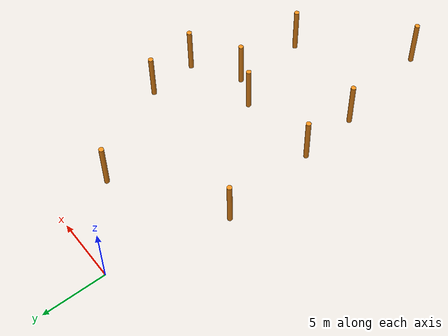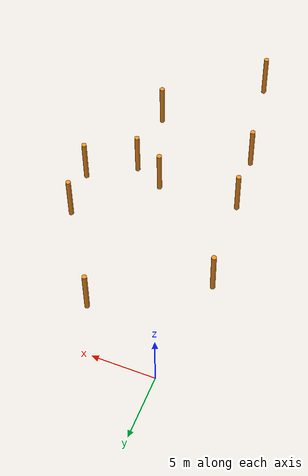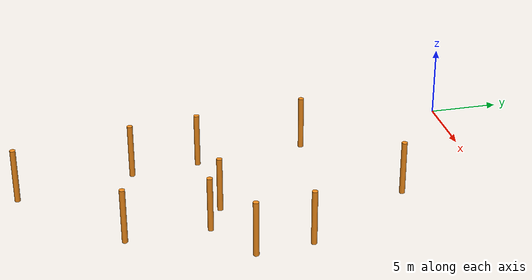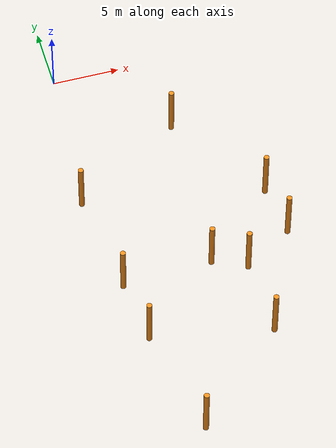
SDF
<sdf version="1.6">
 <model name="Skog">
  <link name="link_1">
   <inertial>
    <mass>1</mass>
    <inertia><ixx>0.145833</ixx><ixy>0</ixy><ixz>0</ixz><iyy>0.145833</iyy><iyz>0</iyz><izz>0.125</izz></inertia>
   </inertial>
   <pose>-0.568148 -10.2215 0 0 -0 0</pose>
   <visual name="visual">
    <geometry><cylinder><radius>0.2</radius><length>4</length></cylinder></geometry>
    <material>
     <lighting>1</lighting>
     <script><uri>file://media/materials/scripts/gazebo.material</uri><name>Gazebo/Orange</name></script>
     <shader type="vertex"><normal_map>__default__</normal_map></shader>
     <ambient>0.3 0.3 0.3 1</ambient>
     <diffuse>0.7 0.7 0.7 1</diffuse>
     <specular>0.01 0.01 0.01 1</specular>
     <emissive>0 0 0 1</emissive>
    </material>
   </visual>
   <collision name="collision">
    <geometry><cylinder><radius>0.2</radius><length>4</length></cylinder></geometry>
    <surface>
     <friction>
      <ode><mu>1</mu><mu2>1</mu2><fdir1>0 0 0</fdir1><slip1>0</slip1><slip2>0</slip2></ode>
      <torsional>
       <coefficient>1</coefficient>
       <patch_radius>0</patch_radius>
       <surface_radius>0</surface_radius>
       <use_patch_radius>1</use_patch_radius>
       <ode><slip>0</slip></ode>
      </torsional>
     </friction>
     <bounce><restitution_coefficient>0</restitution_coefficient><threshold>1e+06</threshold></bounce>
     <contact>
      <collide_without_contact>0</collide_without_contact>
      <collide_without_contact_bitmask>1</collide_without_contact_bitmask>
      <collide_bitmask>1</collide_bitmask>
      <ode>
       <soft_cfm>0</soft_cfm>
       <soft_erp>0.2</soft_erp>
       <kp>1e+13</kp>
       <kd>1</kd>
       <max_vel>0.01</max_vel>
       <min_depth>0</min_depth>
      </ode>
      <bullet>
       <split_impulse>1</split_impulse>
       <split_impulse_penetration_threshold>-0.01</split_impulse_penetration_threshold>
       <soft_cfm>0</soft_cfm>
       <soft_erp>0.2</soft_erp>
       <kp>1e+13</kp>
       <kd>1</kd>
      </bullet>
     </contact>
    </surface>
   </collision>
  </link>
  <link name="link_1_clone">
   <inertial>
    <mass>1</mass>
    <inertia><ixx>0.145833</ixx><ixy>0</ixy><ixz>0</ixz><iyy>0.145833</iyy><iyz>0</iyz><izz>0.125</izz></inertia>
   </inertial>
   <pose>7.77562 -4.95725 0 0 -0 0</pose>
   <visual name="visual">
    <geometry><cylinder><radius>0.2</radius><length>4</length></cylinder></geometry>
    <material>
     <lighting>1</lighting>
     <script><uri>file://media/materials/scripts/gazebo.material</uri><name>Gazebo/Orange</name></script>
     <shader type="vertex"><normal_map>__default__</normal_map></shader>
     <ambient>0.3 0.3 0.3 1</ambient>
     <diffuse>0.7 0.7 0.7 1</diffuse>
     <specular>0.01 0.01 0.01 1</specular>
     <emissive>0 0 0 1</emissive>
    </material>
   </visual>
   <collision name="collision">
    <geometry><cylinder><radius>0.2</radius><length>4</length></cylinder></geometry>
    <surface>
     <friction>
      <ode><mu>1</mu><mu2>1</mu2><fdir1>0 0 0</fdir1><slip1>0</slip1><slip2>0</slip2></ode>
      <torsional>
       <coefficient>1</coefficient>
       <patch_radius>0</patch_radius>
       <surface_radius>0</surface_radius>
       <use_patch_radius>1</use_patch_radius>
       <ode><slip>0</slip></ode>
      </torsional>
     </friction>
     <bounce><restitution_coefficient>0</restitution_coefficient><threshold>1e+06</threshold></bounce>
     <contact>
      <collide_without_contact>0</collide_without_contact>
      <collide_without_contact_bitmask>1</collide_without_contact_bitmask>
      <collide_bitmask>1</collide_bitmask>
      <ode>
       <soft_cfm>0</soft_cfm>
       <soft_erp>0.2</soft_erp>
       <kp>1e+13</kp>
       <kd>1</kd>
       <max_vel>0.01</max_vel>
       <min_depth>0</min_depth>
      </ode>
      <bullet>
       <split_impulse>1</split_impulse>
       <split_impulse_penetration_threshold>-0.01</split_impulse_penetration_threshold>
       <soft_cfm>0</soft_cfm>
       <soft_erp>0.2</soft_erp>
       <kp>1e+13</kp>
       <kd>1</kd>
      </bullet>
     </contact>
    </surface>
   </collision>
  </link>
  <link name="link_1_clone_21">
   <inertial>
    <mass>1</mass>
    <inertia><ixx>0.145833</ixx><ixy>0</ixy><ixz>0</ixz><iyy>0.145833</iyy><iyz>0</iyz><izz>0.125</izz></inertia>
   </inertial>
   <pose>13.2087 -16.7724 0 0 -0 0</pose>
   <visual name="visual">
    <geometry><cylinder><radius>0.2</radius><length>4</length></cylinder></geometry>
    <material>
     <lighting>1</lighting>
     <script><uri>file://media/materials/scripts/gazebo.material</uri><name>Gazebo/Orange</name></script>
     <shader type="vertex"><normal_map>__default__</normal_map></shader>
     <ambient>0.3 0.3 0.3 1</ambient>
     <diffuse>0.7 0.7 0.7 1</diffuse>
     <specular>0.01 0.01 0.01 1</specular>
     <emissive>0 0 0 1</emissive>
    </material>
   </visual>
   <collision name="collision">
    <geometry><cylinder><radius>0.2</radius><length>4</length></cylinder></geometry>
    <surface>
     <friction>
      <ode><mu>1</mu><mu2>1</mu2><fdir1>0 0 0</fdir1><slip1>0</slip1><slip2>0</slip2></ode>
      <torsional>
       <coefficient>1</coefficient>
       <patch_radius>0</patch_radius>
       <surface_radius>0</surface_radius>
       <use_patch_radius>1</use_patch_radius>
       <ode><slip>0</slip></ode>
      </torsional>
     </friction>
     <bounce><restitution_coefficient>0</restitution_coefficient><threshold>1e+06</threshold></bounce>
     <contact>
      <collide_without_contact>0</collide_without_contact>
      <collide_without_contact_bitmask>1</collide_without_contact_bitmask>
      <collide_bitmask>1</collide_bitmask>
      <ode>
       <soft_cfm>0</soft_cfm>
       <soft_erp>0.2</soft_erp>
       <kp>1e+13</kp>
       <kd>1</kd>
       <max_vel>0.01</max_vel>
       <min_depth>0</min_depth>
      </ode>
      <bullet>
       <split_impulse>1</split_impulse>
       <split_impulse_penetration_threshold>-0.01</split_impulse_penetration_threshold>
       <soft_cfm>0</soft_cfm>
       <soft_erp>0.2</soft_erp>
       <kp>1e+13</kp>
       <kd>1</kd>
      </bullet>
     </contact>
    </surface>
   </collision>
  </link>
  <link name="link_1_clone_32">
   <inertial>
    <mass>1</mass>
    <inertia><ixx>0.145833</ixx><ixy>0</ixy><ixz>0</ixz><iyy>0.145833</iyy><iyz>0</iyz><izz>0.125</izz></inertia>
   </inertial>
   <pose>0.377332 -18.2945 0 0 -0 0</pose>
   <visual name="visual">
    <geometry><cylinder><radius>0.2</radius><length>4</length></cylinder></geometry>
    <material>
     <lighting>1</lighting>
     <script><uri>file://media/materials/scripts/gazebo.material</uri><name>Gazebo/Orange</name></script>
     <shader type="vertex"><normal_map>__default__</normal_map></shader>
     <ambient>0.3 0.3 0.3 1</ambient>
     <diffuse>0.7 0.7 0.7 1</diffuse>
     <specular>0.01 0.01 0.01 1</specular>
     <emissive>0 0 0 1</emissive>
    </material>
   </visual>
   <collision name="collision">
    <geometry><cylinder><radius>0.2</radius><length>4</length></cylinder></geometry>
    <surface>
     <friction>
      <ode><mu>1</mu><mu2>1</mu2><fdir1>0 0 0</fdir1><slip1>0</slip1><slip2>0</slip2></ode>
      <torsional>
       <coefficient>1</coefficient>
       <patch_radius>0</patch_radius>
       <surface_radius>0</surface_radius>
       <use_patch_radius>1</use_patch_radius>
       <ode><slip>0</slip></ode>
      </torsional>
     </friction>
     <bounce><restitution_coefficient>0</restitution_coefficient><threshold>1e+06</threshold></bounce>
     <contact>
      <collide_without_contact>0</collide_without_contact>
      <collide_without_contact_bitmask>1</collide_without_contact_bitmask>
      <collide_bitmask>1</collide_bitmask>
      <ode>
       <soft_cfm>0</soft_cfm>
       <soft_erp>0.2</soft_erp>
       <kp>1e+13</kp>
       <kd>1</kd>
       <max_vel>0.01</max_vel>
       <min_depth>0</min_depth>
      </ode>
      <bullet>
       <split_impulse>1</split_impulse>
       <split_impulse_penetration_threshold>-0.01</split_impulse_penetration_threshold>
       <soft_cfm>0</soft_cfm>
       <soft_erp>0.2</soft_erp>
       <kp>1e+13</kp>
       <kd>1</kd>
      </bullet>
     </contact>
    </surface>
   </collision>
  </link>
  <link name="link_1_clone_38">
   <inertial>
    <mass>1</mass>
    <inertia><ixx>0.145833</ixx><ixy>0</ixy><ixz>0</ixz><iyy>0.145833</iyy><iyz>0</iyz><izz>0.125</izz></inertia>
   </inertial>
   <pose>0.933823 -23.2058 0 0 -0 0</pose>
   <visual name="visual">
    <geometry><cylinder><radius>0.2</radius><length>4</length></cylinder></geometry>
    <material>
     <lighting>1</lighting>
     <script><uri>file://media/materials/scripts/gazebo.material</uri><name>Gazebo/Orange</name></script>
     <shader type="vertex"><normal_map>__default__</normal_map></shader>
     <ambient>0.3 0.3 0.3 1</ambient>
     <diffuse>0.7 0.7 0.7 1</diffuse>
     <specular>0.01 0.01 0.01 1</specular>
     <emissive>0 0 0 1</emissive>
    </material>
   </visual>
   <collision name="collision">
    <geometry><cylinder><radius>0.2</radius><length>4</length></cylinder></geometry>
    <surface>
     <friction>
      <ode><mu>1</mu><mu2>1</mu2><fdir1>0 0 0</fdir1><slip1>0</slip1><slip2>0</slip2></ode>
      <torsional>
       <coefficient>1</coefficient>
       <patch_radius>0</patch_radius>
       <surface_radius>0</surface_radius>
       <use_patch_radius>1</use_patch_radius>
       <ode><slip>0</slip></ode>
      </torsional>
     </friction>
     <bounce><restitution_coefficient>0</restitution_coefficient><threshold>1e+06</threshold></bounce>
     <contact>
      <collide_without_contact>0</collide_without_contact>
      <collide_without_contact_bitmask>1</collide_without_contact_bitmask>
      <collide_bitmask>1</collide_bitmask>
      <ode>
       <soft_cfm>0</soft_cfm>
       <soft_erp>0.2</soft_erp>
       <kp>1e+13</kp>
       <kd>1</kd>
       <max_vel>0.01</max_vel>
       <min_depth>0</min_depth>
      </ode>
      <bullet>
       <split_impulse>1</split_impulse>
       <split_impulse_penetration_threshold>-0.01</split_impulse_penetration_threshold>
       <soft_cfm>0</soft_cfm>
       <soft_erp>0.2</soft_erp>
       <kp>1e+13</kp>
       <kd>1</kd>
      </bullet>
     </contact>
    </surface>
   </collision>
  </link>
  <link name="link_1_clone_39">
   <inertial>
    <mass>1</mass>
    <inertia><ixx>0.145833</ixx><ixy>0</ixy><ixz>0</ixz><iyy>0.145833</iyy><iyz>0</iyz><izz>0.125</izz></inertia>
   </inertial>
   <pose>9.67532 -24.9097 0 0 -0 0</pose>
   <visual name="visual">
    <geometry><cylinder><radius>0.2</radius><length>4</length></cylinder></geometry>
    <material>
     <lighting>1</lighting>
     <script><uri>file://media/materials/scripts/gazebo.material</uri><name>Gazebo/Orange</name></script>
     <shader type="vertex"><normal_map>__default__</normal_map></shader>
     <ambient>0.3 0.3 0.3 1</ambient>
     <diffuse>0.7 0.7 0.7 1</diffuse>
     <specular>0.01 0.01 0.01 1</specular>
     <emissive>0 0 0 1</emissive>
    </material>
   </visual>
   <collision name="collision">
    <geometry><cylinder><radius>0.2</radius><length>4</length></cylinder></geometry>
    <surface>
     <friction>
      <ode><mu>1</mu><mu2>1</mu2><fdir1>0 0 0</fdir1><slip1>0</slip1><slip2>0</slip2></ode>
      <torsional>
       <coefficient>1</coefficient>
       <patch_radius>0</patch_radius>
       <surface_radius>0</surface_radius>
       <use_patch_radius>1</use_patch_radius>
       <ode><slip>0</slip></ode>
      </torsional>
     </friction>
     <bounce><restitution_coefficient>0</restitution_coefficient><threshold>1e+06</threshold></bounce>
     <contact>
      <collide_without_contact>0</collide_without_contact>
      <collide_without_contact_bitmask>1</collide_without_contact_bitmask>
      <collide_bitmask>1</collide_bitmask>
      <ode>
       <soft_cfm>0</soft_cfm>
       <soft_erp>0.2</soft_erp>
       <kp>1e+13</kp>
       <kd>1</kd>
       <max_vel>0.01</max_vel>
       <min_depth>0</min_depth>
      </ode>
      <bullet>
       <split_impulse>1</split_impulse>
       <split_impulse_penetration_threshold>-0.01</split_impulse_penetration_threshold>
       <soft_cfm>0</soft_cfm>
       <soft_erp>0.2</soft_erp>
       <kp>1e+13</kp>
       <kd>1</kd>
      </bullet>
     </contact>
    </surface>
   </collision>
  </link>
  <link name="link_1_clone_50">
   <inertial>
    <mass>1</mass>
    <inertia><ixx>0.145833</ixx><ixy>0</ixy><ixz>0</ixz><iyy>0.145833</iyy><iyz>0</iyz><izz>0.125</izz></inertia>
   </inertial>
   <pose>2.6419 -31.5253 0 0 -0 0</pose>
   <visual name="visual">
    <geometry><cylinder><radius>0.2</radius><length>4</length></cylinder></geometry>
    <material>
     <lighting>1</lighting>
     <script><uri>file://media/materials/scripts/gazebo.material</uri><name>Gazebo/Orange</name></script>
     <shader type="vertex"><normal_map>__default__</normal_map></shader>
     <ambient>0.3 0.3 0.3 1</ambient>
     <diffuse>0.7 0.7 0.7 1</diffuse>
     <specular>0.01 0.01 0.01 1</specular>
     <emissive>0 0 0 1</emissive>
    </material>
   </visual>
   <collision name="collision">
    <geometry><cylinder><radius>0.2</radius><length>4</length></cylinder></geometry>
    <surface>
     <friction>
      <ode><mu>1</mu><mu2>1</mu2><fdir1>0 0 0</fdir1><slip1>0</slip1><slip2>0</slip2></ode>
      <torsional>
       <coefficient>1</coefficient>
       <patch_radius>0</patch_radius>
       <surface_radius>0</surface_radius>
       <use_patch_radius>1</use_patch_radius>
       <ode><slip>0</slip></ode>
      </torsional>
     </friction>
     <bounce><restitution_coefficient>0</restitution_coefficient><threshold>1e+06</threshold></bounce>
     <contact>
      <collide_without_contact>0</collide_without_contact>
      <collide_without_contact_bitmask>1</collide_without_contact_bitmask>
      <collide_bitmask>1</collide_bitmask>
      <ode>
       <soft_cfm>0</soft_cfm>
       <soft_erp>0.2</soft_erp>
       <kp>1e+13</kp>
       <kd>1</kd>
       <max_vel>0.01</max_vel>
       <min_depth>0</min_depth>
      </ode>
      <bullet>
       <split_impulse>1</split_impulse>
       <split_impulse_penetration_threshold>-0.01</split_impulse_penetration_threshold>
       <soft_cfm>0</soft_cfm>
       <soft_erp>0.2</soft_erp>
       <kp>1e+13</kp>
       <kd>1</kd>
      </bullet>
     </contact>
    </surface>
   </collision>
  </link>
  <link name="link_1_clone_6">
   <inertial>
    <mass>1</mass>
    <inertia><ixx>0.145833</ixx><ixy>0</ixy><ixz>0</ixz><iyy>0.145833</iyy><iyz>0</iyz><izz>0.125</izz></inertia>
   </inertial>
   <pose>12.7401 -12.7368 0 0 -0 0</pose>
   <visual name="visual">
    <geometry><cylinder><radius>0.2</radius><length>4</length></cylinder></geometry>
    <material>
     <lighting>1</lighting>
     <script><uri>file://media/materials/scripts/gazebo.material</uri><name>Gazebo/Orange</name></script>
     <shader type="vertex"><normal_map>__default__</normal_map></shader>
     <ambient>0.3 0.3 0.3 1</ambient>
     <diffuse>0.7 0.7 0.7 1</diffuse>
     <specular>0.01 0.01 0.01 1</specular>
     <emissive>0 0 0 1</emissive>
    </material>
   </visual>
   <collision name="collision">
    <geometry><cylinder><radius>0.2</radius><length>4</length></cylinder></geometry>
    <surface>
     <friction>
      <ode><mu>1</mu><mu2>1</mu2><fdir1>0 0 0</fdir1><slip1>0</slip1><slip2>0</slip2></ode>
      <torsional>
       <coefficient>1</coefficient>
       <patch_radius>0</patch_radius>
       <surface_radius>0</surface_radius>
       <use_patch_radius>1</use_patch_radius>
       <ode><slip>0</slip></ode>
      </torsional>
     </friction>
     <bounce><restitution_coefficient>0</restitution_coefficient><threshold>1e+06</threshold></bounce>
     <contact>
      <collide_without_contact>0</collide_without_contact>
      <collide_without_contact_bitmask>1</collide_without_contact_bitmask>
      <collide_bitmask>1</collide_bitmask>
      <ode>
       <soft_cfm>0</soft_cfm>
       <soft_erp>0.2</soft_erp>
       <kp>1e+13</kp>
       <kd>1</kd>
       <max_vel>0.01</max_vel>
       <min_depth>0</min_depth>
      </ode>
      <bullet>
       <split_impulse>1</split_impulse>
       <split_impulse_penetration_threshold>-0.01</split_impulse_penetration_threshold>
       <soft_cfm>0</soft_cfm>
       <soft_erp>0.2</soft_erp>
       <kp>1e+13</kp>
       <kd>1</kd>
      </bullet>
     </contact>
    </surface>
   </collision>
  </link>
  <link name="link_1_clone_67">
   <inertial>
    <mass>1</mass>
    <inertia><ixx>0.145833</ixx><ixy>0</ixy><ixz>0</ixz><iyy>0.145833</iyy><iyz>0</iyz><izz>0.125</izz></inertia>
   </inertial>
   <pose>7.07507 -17.9402 0 0 -0 0</pose>
   <visual name="visual">
    <geometry><cylinder><radius>0.2</radius><length>4</length></cylinder></geometry>
    <material>
     <lighting>1</lighting>
     <script><uri>file://media/materials/scripts/gazebo.material</uri><name>Gazebo/Orange</name></script>
     <shader type="vertex"><normal_map>__default__</normal_map></shader>
     <ambient>0.3 0.3 0.3 1</ambient>
     <diffuse>0.7 0.7 0.7 1</diffuse>
     <specular>0.01 0.01 0.01 1</specular>
     <emissive>0 0 0 1</emissive>
    </material>
   </visual>
   <collision name="collision">
    <geometry><cylinder><radius>0.2</radius><length>4</length></cylinder></geometry>
    <surface>
     <friction>
      <ode><mu>1</mu><mu2>1</mu2><fdir1>0 0 0</fdir1><slip1>0</slip1><slip2>0</slip2></ode>
      <torsional>
       <coefficient>1</coefficient>
       <patch_radius>0</patch_radius>
       <surface_radius>0</surface_radius>
       <use_patch_radius>1</use_patch_radius>
       <ode><slip>0</slip></ode>
      </torsional>
     </friction>
     <bounce><restitution_coefficient>0</restitution_coefficient><threshold>1e+06</threshold></bounce>
     <contact>
      <collide_without_contact>0</collide_without_contact>
      <collide_without_contact_bitmask>1</collide_without_contact_bitmask>
      <collide_bitmask>1</collide_bitmask>
      <ode>
       <soft_cfm>0</soft_cfm>
       <soft_erp>0.2</soft_erp>
       <kp>1e+13</kp>
       <kd>1</kd>
       <max_vel>0.01</max_vel>
       <min_depth>0</min_depth>
      </ode>
      <bullet>
       <split_impulse>1</split_impulse>
       <split_impulse_penetration_threshold>-0.01</split_impulse_penetration_threshold>
       <soft_cfm>0</soft_cfm>
       <soft_erp>0.2</soft_erp>
       <kp>1e+13</kp>
       <kd>1</kd>
      </bullet>
     </contact>
    </surface>
   </collision>
  </link>
  <link name="link_1_clone_70">
   <inertial>
    <mass>1</mass>
    <inertia><ixx>0.145833</ixx><ixy>0</ixy><ixz>0</ixz><iyy>0.145833</iyy><iyz>0</iyz><izz>0.125</izz></inertia>
   </inertial>
   <pose>9.50798 -19.0768 0 0 -0 0</pose>
   <visual name="visual">
    <geometry><cylinder><radius>0.2</radius><length>4</length></cylinder></geometry>
    <material>
     <lighting>1</lighting>
     <script><uri>file://media/materials/scripts/gazebo.material</uri><name>Gazebo/Orange</name></script>
     <shader type="vertex"><normal_map>__default__</normal_map></shader>
     <ambient>0.3 0.3 0.3 1</ambient>
     <diffuse>0.7 0.7 0.7 1</diffuse>
     <specular>0.01 0.01 0.01 1</specular>
     <emissive>0 0 0 1</emissive>
    </material>
   </visual>
   <collision name="collision">
    <geometry><cylinder><radius>0.2</radius><length>4</length></cylinder></geometry>
    <surface>
     <friction>
      <ode><mu>1</mu><mu2>1</mu2><fdir1>0 0 0</fdir1><slip1>0</slip1><slip2>0</slip2></ode>
      <torsional>
       <coefficient>1</coefficient>
       <patch_radius>0</patch_radius>
       <surface_radius>0</surface_radius>
       <use_patch_radius>1</use_patch_radius>
       <ode><slip>0</slip></ode>
      </torsional>
     </friction>
     <bounce><restitution_coefficient>0</restitution_coefficient><threshold>1e+06</threshold></bounce>
     <contact>
      <collide_without_contact>0</collide_without_contact>
      <collide_without_contact_bitmask>1</collide_without_contact_bitmask>
      <collide_bitmask>1</collide_bitmask>
      <ode>
       <soft_cfm>0</soft_cfm>
       <soft_erp>0.2</soft_erp>
       <kp>1e+13</kp>
       <kd>1</kd>
       <max_vel>0.01</max_vel>
       <min_depth>0</min_depth>
      </ode>
      <bullet>
       <split_impulse>1</split_impulse>
       <split_impulse_penetration_threshold>-0.01</split_impulse_penetration_threshold>
       <soft_cfm>0</soft_cfm>
       <soft_erp>0.2</soft_erp>
       <kp>1e+13</kp>
       <kd>1</kd>
      </bullet>
     </contact>
    </surface>
   </collision>
  </link>
  <static>0</static>
 </model>
</sdf>
